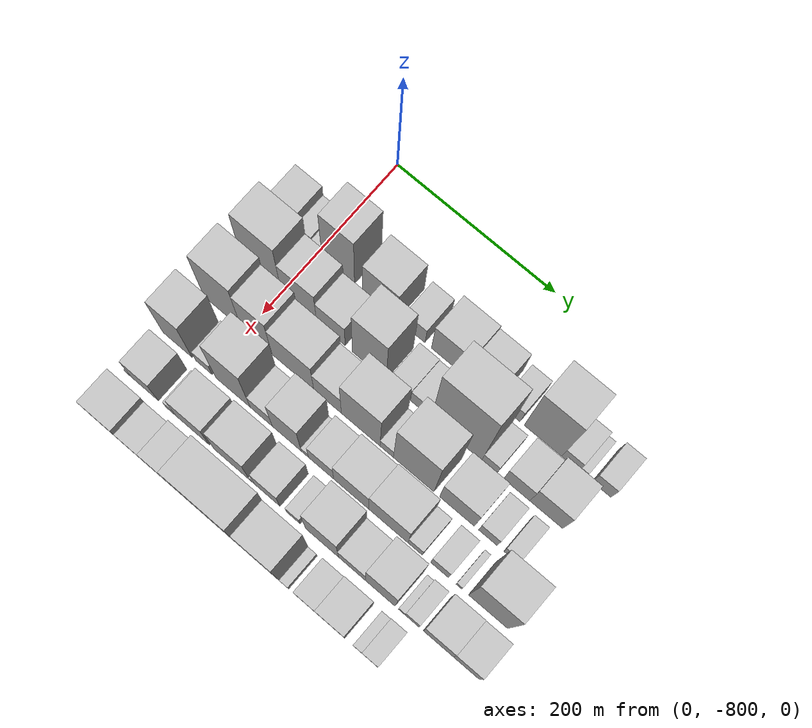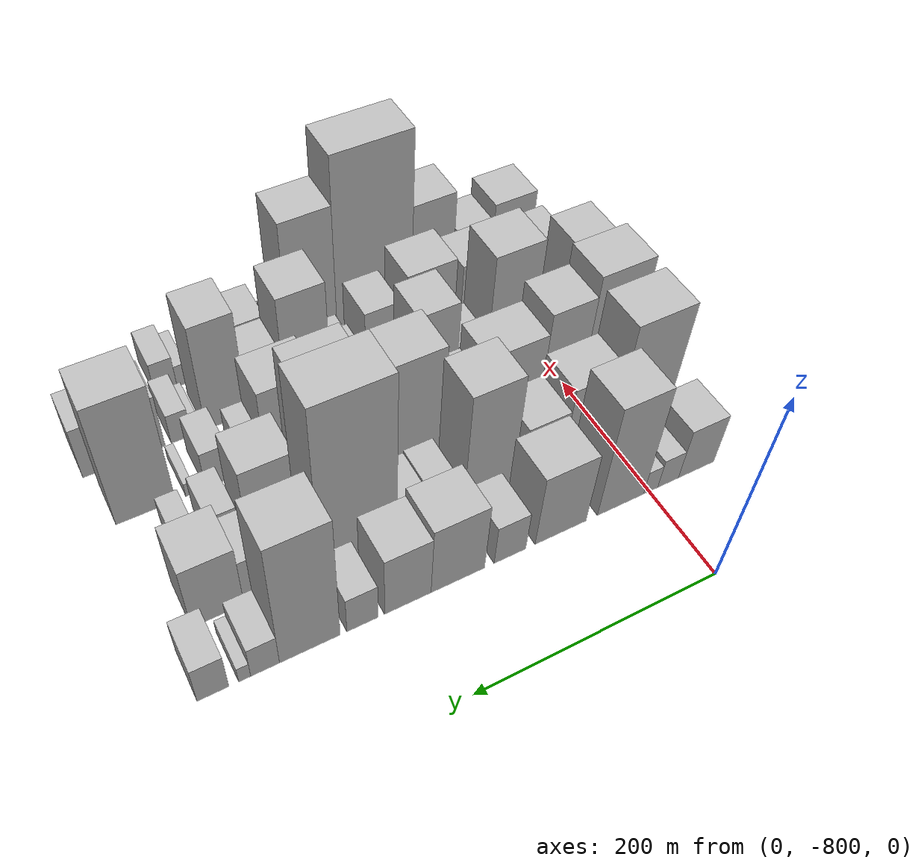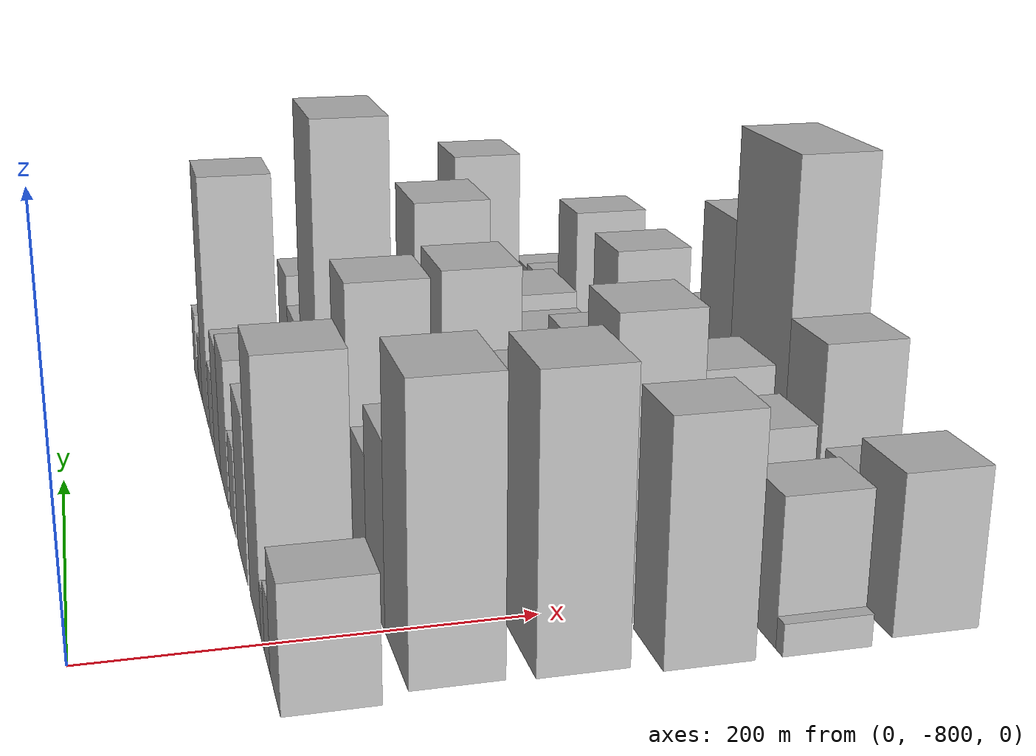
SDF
<sdf version="1.6">
 <world name="default">
  <model name="building_1">
   <static>1</static>
   <pose>100.0000 -843.2579 0 0.000000 0.000000 0.000000</pose>
   <link name="link">
    <pose>0 0 28.50 0 0 0</pose>
    <collision name="collision"><geometry><box><size>40.0000 33.4842 57.0000</size></box></geometry></collision>
    <visual name="visual">
     <cast_shadows>0</cast_shadows>
     <geometry><box><size>40.0000 33.4842 57.0000</size></box></geometry>
     <material>
      <script>
       <uri>model://HANNAS_wall/materials/scripts</uri>
       <uri>model://HANNAS_wall/materials/textures</uri>
       <name>vrc/HANNAS_wall</name>
      </script>
     </material>
    </visual>
   </link>
  </model>
  <model name="building_2">
   <static>1</static>
   <pose>100.0000 -816.9576 0 0.000000 0.000000 0.000000</pose>
   <link name="link">
    <pose>0 0 16.50 0 0 0</pose>
    <collision name="collision"><geometry><box><size>40.0000 19.1166 33.0000</size></box></geometry></collision>
    <visual name="visual">
     <cast_shadows>0</cast_shadows>
     <geometry><box><size>40.0000 19.1166 33.0000</size></box></geometry>
     <material>
      <script>
       <uri>model://HANNAS_wall/materials/scripts</uri>
       <uri>model://HANNAS_wall/materials/textures</uri>
       <name>vrc/HANNAS_wall</name>
      </script>
     </material>
    </visual>
   </link>
  </model>
  <model name="building_3">
   <static>1</static>
   <pose>100.0000 -800.8615 0 0.000000 0.000000 0.000000</pose>
   <link name="link">
    <pose>0 0 13.50 0 0 0</pose>
    <collision name="collision"><geometry><box><size>40.0000 13.0756 27.0000</size></box></geometry></collision>
    <visual name="visual">
     <cast_shadows>0</cast_shadows>
     <geometry><box><size>40.0000 13.0756 27.0000</size></box></geometry>
     <material>
      <script>
       <uri>model://HANNAS_wall/materials/scripts</uri>
       <uri>model://HANNAS_wall/materials/textures</uri>
       <name>vrc/HANNAS_wall</name>
      </script>
     </material>
    </visual>
   </link>
  </model>
  <model name="building_4">
   <static>1</static>
   <pose>100.0000 -773.4738 0 0.000000 0.000000 0.000000</pose>
   <link name="link">
    <pose>0 0 63.00 0 0 0</pose>
    <collision name="collision"><geometry><box><size>40.0000 41.6998 126.0000</size></box></geometry></collision>
    <visual name="visual">
     <cast_shadows>0</cast_shadows>
     <geometry><box><size>40.0000 41.6998 126.0000</size></box></geometry>
     <material>
      <script>
       <uri>model://HANNAS_wall/materials/scripts</uri>
       <uri>model://HANNAS_wall/materials/textures</uri>
       <name>vrc/HANNAS_wall</name>
      </script>
     </material>
    </visual>
   </link>
  </model>
  <model name="building_5">
   <static>1</static>
   <pose>100.0000 -720.4473 0 0.000000 0.000000 0.000000</pose>
   <link name="link">
    <pose>0 0 40.50 0 0 0</pose>
    <collision name="collision"><geometry><box><size>40.0000 44.3533 81.0000</size></box></geometry></collision>
    <visual name="visual">
     <cast_shadows>0</cast_shadows>
     <geometry><box><size>40.0000 44.3533 81.0000</size></box></geometry>
     <material>
      <script>
       <uri>model://HANNAS_wall/materials/scripts</uri>
       <uri>model://HANNAS_wall/materials/textures</uri>
       <name>vrc/HANNAS_wall</name>
      </script>
     </material>
    </visual>
   </link>
  </model>
  <model name="building_6">
   <static>1</static>
   <pose>100.0000 -676.9597 0 0.000000 0.000000 0.000000</pose>
   <link name="link">
    <pose>0 0 22.50 0 0 0</pose>
    <collision name="collision"><geometry><box><size>40.0000 26.6221 45.0000</size></box></geometry></collision>
    <visual name="visual">
     <cast_shadows>0</cast_shadows>
     <geometry><box><size>40.0000 26.6221 45.0000</size></box></geometry>
     <material>
      <script>
       <uri>model://HANNAS_wall/materials/scripts</uri>
       <uri>model://HANNAS_wall/materials/textures</uri>
       <name>vrc/HANNAS_wall</name>
      </script>
     </material>
    </visual>
   </link>
  </model>
  <model name="building_7">
   <static>1</static>
   <pose>100.0000 -633.8017 0 0.000000 0.000000 0.000000</pose>
   <link name="link">
    <pose>0 0 39.00 0 0 0</pose>
    <collision name="collision"><geometry><box><size>40.0000 43.6939 78.0000</size></box></geometry></collision>
    <visual name="visual">
     <cast_shadows>0</cast_shadows>
     <geometry><box><size>40.0000 43.6939 78.0000</size></box></geometry>
     <material>
      <script>
       <uri>model://HANNAS_wall/materials/scripts</uri>
       <uri>model://HANNAS_wall/materials/textures</uri>
       <name>vrc/HANNAS_wall</name>
      </script>
     </material>
    </visual>
   </link>
  </model>
  <model name="building_8">
   <static>1</static>
   <pose>100.0000 -593.5074 0 0.000000 0.000000 0.000000</pose>
   <link name="link">
    <pose>0 0 34.50 0 0 0</pose>
    <collision name="collision"><geometry><box><size>40.0000 36.8945 69.0000</size></box></geometry></collision>
    <visual name="visual">
     <cast_shadows>0</cast_shadows>
     <geometry><box><size>40.0000 36.8945 69.0000</size></box></geometry>
     <material>
      <script>
       <uri>model://HANNAS_wall/materials/scripts</uri>
       <uri>model://HANNAS_wall/materials/textures</uri>
       <name>vrc/HANNAS_wall</name>
      </script>
     </material>
    </visual>
   </link>
  </model>
  <model name="building_9">
   <static>1</static>
   <pose>100.0000 -558.0110 0 0.000000 0.000000 0.000000</pose>
   <link name="link">
    <pose>0 0 21.00 0 0 0</pose>
    <collision name="collision"><geometry><box><size>40.0000 24.0984 42.0000</size></box></geometry></collision>
    <visual name="visual">
     <cast_shadows>0</cast_shadows>
     <geometry><box><size>40.0000 24.0984 42.0000</size></box></geometry>
     <material>
      <script>
       <uri>model://HANNAS_wall/materials/scripts</uri>
       <uri>model://HANNAS_wall/materials/textures</uri>
       <name>vrc/HANNAS_wall</name>
      </script>
     </material>
    </visual>
   </link>
  </model>
  <model name="building_10">
   <static>1</static>
   <pose>100.0000 -518.2136 0 0.000000 0.000000 0.000000</pose>
   <link name="link">
    <pose>0 0 72.00 0 0 0</pose>
    <collision name="collision"><geometry><box><size>40.0000 45.4963 144.0000</size></box></geometry></collision>
    <visual name="visual">
     <cast_shadows>0</cast_shadows>
     <geometry><box><size>40.0000 45.4963 144.0000</size></box></geometry>
     <material>
      <script>
       <uri>model://HANNAS_wall/materials/scripts</uri>
       <uri>model://HANNAS_wall/materials/textures</uri>
       <name>vrc/HANNAS_wall</name>
      </script>
     </material>
    </visual>
   </link>
  </model>
  <model name="building_11">
   <static>1</static>
   <pose>100.0000 -484.9639 0 0.000000 0.000000 0.000000</pose>
   <link name="link">
    <pose>0 0 18.00 0 0 0</pose>
    <collision name="collision"><geometry><box><size>40.0000 21.0030 36.0000</size></box></geometry></collision>
    <visual name="visual">
     <cast_shadows>0</cast_shadows>
     <geometry><box><size>40.0000 21.0030 36.0000</size></box></geometry>
     <material>
      <script>
       <uri>model://HANNAS_wall/materials/scripts</uri>
       <uri>model://HANNAS_wall/materials/textures</uri>
       <name>vrc/HANNAS_wall</name>
      </script>
     </material>
    </visual>
   </link>
  </model>
  <model name="building_12">
   <static>1</static>
   <pose>100.0000 -470.1170 0 0.000000 0.000000 0.000000</pose>
   <link name="link">
    <pose>0 0 9.00 0 0 0</pose>
    <collision name="collision"><geometry><box><size>40.0000 8.6909 18.0000</size></box></geometry></collision>
    <visual name="visual">
     <cast_shadows>0</cast_shadows>
     <geometry><box><size>40.0000 8.6909 18.0000</size></box></geometry>
     <material>
      <script>
       <uri>model://HANNAS_wall/materials/scripts</uri>
       <uri>model://HANNAS_wall/materials/textures</uri>
       <name>vrc/HANNAS_wall</name>
      </script>
     </material>
    </visual>
   </link>
  </model>
  <model name="building_13">
   <static>1</static>
   <pose>100.0000 -447.4623 0 0.000000 0.000000 0.000000</pose>
   <link name="link">
    <pose>0 0 21.00 0 0 0</pose>
    <collision name="collision"><geometry><box><size>40.0000 22.6184 42.0000</size></box></geometry></collision>
    <visual name="visual">
     <cast_shadows>0</cast_shadows>
     <geometry><box><size>40.0000 22.6184 42.0000</size></box></geometry>
     <material>
      <script>
       <uri>model://HANNAS_wall/materials/scripts</uri>
       <uri>model://HANNAS_wall/materials/textures</uri>
       <name>vrc/HANNAS_wall</name>
      </script>
     </material>
    </visual>
   </link>
  </model>
  <model name="building_56">
   <static>1</static>
   <pose>152.0000 -826.3338 0 0.000000 0.000000 0.000000</pose>
   <link name="link">
    <pose>0 0 66.00 0 0 0</pose>
    <collision name="collision"><geometry><box><size>40.0000 51.3324 132.0000</size></box></geometry></collision>
    <visual name="visual">
     <cast_shadows>0</cast_shadows>
     <geometry><box><size>40.0000 51.3324 132.0000</size></box></geometry>
     <material>
      <script>
       <uri>model://HANNAS_wall/materials/scripts</uri>
       <uri>model://HANNAS_wall/materials/textures</uri>
       <name>vrc/HANNAS_wall</name>
      </script>
     </material>
    </visual>
   </link>
  </model>
  <model name="building_57">
   <static>1</static>
   <pose>152.0000 -778.1442 0 0.000000 0.000000 0.000000</pose>
   <link name="link">
    <pose>0 0 43.50 0 0 0</pose>
    <collision name="collision"><geometry><box><size>40.0000 45.0468 87.0000</size></box></geometry></collision>
    <visual name="visual">
     <cast_shadows>0</cast_shadows>
     <geometry><box><size>40.0000 45.0468 87.0000</size></box></geometry>
     <material>
      <script>
       <uri>model://HANNAS_wall/materials/scripts</uri>
       <uri>model://HANNAS_wall/materials/textures</uri>
       <name>vrc/HANNAS_wall</name>
      </script>
     </material>
    </visual>
   </link>
  </model>
  <model name="building_58">
   <static>1</static>
   <pose>152.0000 -737.5337 0 0.000000 0.000000 0.000000</pose>
   <link name="link">
    <pose>0 0 31.50 0 0 0</pose>
    <collision name="collision"><geometry><box><size>40.0000 36.1742 63.0000</size></box></geometry></collision>
    <visual name="visual">
     <cast_shadows>0</cast_shadows>
     <geometry><box><size>40.0000 36.1742 63.0000</size></box></geometry>
     <material>
      <script>
       <uri>model://HANNAS_wall/materials/scripts</uri>
       <uri>model://HANNAS_wall/materials/textures</uri>
       <name>vrc/HANNAS_wall</name>
      </script>
     </material>
    </visual>
   </link>
  </model>
  <model name="building_59">
   <static>1</static>
   <pose>152.0000 -689.2909 0 0.000000 0.000000 0.000000</pose>
   <link name="link">
    <pose>0 0 64.50 0 0 0</pose>
    <collision name="collision"><geometry><box><size>40.0000 42.3113 129.0000</size></box></geometry></collision>
    <visual name="visual">
     <cast_shadows>0</cast_shadows>
     <geometry><box><size>40.0000 42.3113 129.0000</size></box></geometry>
     <material>
      <script>
       <uri>model://HANNAS_wall/materials/scripts</uri>
       <uri>model://HANNAS_wall/materials/textures</uri>
       <name>vrc/HANNAS_wall</name>
      </script>
     </material>
    </visual>
   </link>
  </model>
  <model name="building_60">
   <static>1</static>
   <pose>152.0000 -649.9249 0 0.000000 0.000000 0.000000</pose>
   <link name="link">
    <pose>0 0 21.00 0 0 0</pose>
    <collision name="collision"><geometry><box><size>40.0000 24.4207 42.0000</size></box></geometry></collision>
    <visual name="visual">
     <cast_shadows>0</cast_shadows>
     <geometry><box><size>40.0000 24.4207 42.0000</size></box></geometry>
     <material>
      <script>
       <uri>model://HANNAS_wall/materials/scripts</uri>
       <uri>model://HANNAS_wall/materials/textures</uri>
       <name>vrc/HANNAS_wall</name>
      </script>
     </material>
    </visual>
   </link>
  </model>
  <model name="building_61">
   <static>1</static>
   <pose>152.0000 -626.3529 0 0.000000 0.000000 0.000000</pose>
   <link name="link">
    <pose>0 0 19.50 0 0 0</pose>
    <collision name="collision"><geometry><box><size>40.0000 22.7233 39.0000</size></box></geometry></collision>
    <visual name="visual">
     <cast_shadows>0</cast_shadows>
     <geometry><box><size>40.0000 22.7233 39.0000</size></box></geometry>
     <material>
      <script>
       <uri>model://HANNAS_wall/materials/scripts</uri>
       <uri>model://HANNAS_wall/materials/textures</uri>
       <name>vrc/HANNAS_wall</name>
      </script>
     </material>
    </visual>
   </link>
  </model>
  <model name="building_62">
   <static>1</static>
   <pose>152.0000 -580.9666 0 0.000000 0.000000 0.000000</pose>
   <link name="link">
    <pose>0 0 93.00 0 0 0</pose>
    <collision name="collision"><geometry><box><size>40.0000 62.0494 186.0000</size></box></geometry></collision>
    <visual name="visual">
     <cast_shadows>0</cast_shadows>
     <geometry><box><size>40.0000 62.0494 186.0000</size></box></geometry>
     <material>
      <script>
       <uri>model://HANNAS_wall/materials/scripts</uri>
       <uri>model://HANNAS_wall/materials/textures</uri>
       <name>vrc/HANNAS_wall</name>
      </script>
     </material>
    </visual>
   </link>
  </model>
  <model name="building_63">
   <static>1</static>
   <pose>152.0000 -540.5453 0 0.000000 0.000000 0.000000</pose>
   <link name="link">
    <pose>0 0 16.50 0 0 0</pose>
    <collision name="collision"><geometry><box><size>40.0000 18.7930 33.0000</size></box></geometry></collision>
    <visual name="visual">
     <cast_shadows>0</cast_shadows>
     <geometry><box><size>40.0000 18.7930 33.0000</size></box></geometry>
     <material>
      <script>
       <uri>model://HANNAS_wall/materials/scripts</uri>
       <uri>model://HANNAS_wall/materials/textures</uri>
       <name>vrc/HANNAS_wall</name>
      </script>
     </material>
    </visual>
   </link>
  </model>
  <model name="building_64">
   <static>1</static>
   <pose>152.0000 -507.2695 0 0.000000 0.000000 0.000000</pose>
   <link name="link">
    <pose>0 0 27.00 0 0 0</pose>
    <collision name="collision"><geometry><box><size>40.0000 31.7587 54.0000</size></box></geometry></collision>
    <visual name="visual">
     <cast_shadows>0</cast_shadows>
     <geometry><box><size>40.0000 31.7587 54.0000</size></box></geometry>
     <material>
      <script>
       <uri>model://HANNAS_wall/materials/scripts</uri>
       <uri>model://HANNAS_wall/materials/textures</uri>
       <name>vrc/HANNAS_wall</name>
      </script>
     </material>
    </visual>
   </link>
  </model>
  <model name="building_65">
   <static>1</static>
   <pose>152.0000 -471.6300 0 0.000000 0.000000 0.000000</pose>
   <link name="link">
    <pose>0 0 36.00 0 0 0</pose>
    <collision name="collision"><geometry><box><size>40.0000 39.5203 72.0000</size></box></geometry></collision>
    <visual name="visual">
     <cast_shadows>0</cast_shadows>
     <geometry><box><size>40.0000 39.5203 72.0000</size></box></geometry>
     <material>
      <script>
       <uri>model://HANNAS_wall/materials/scripts</uri>
       <uri>model://HANNAS_wall/materials/textures</uri>
       <name>vrc/HANNAS_wall</name>
      </script>
     </material>
    </visual>
   </link>
  </model>
  <model name="building_104">
   <static>1</static>
   <pose>204.0000 -829.8486 0 0.000000 0.000000 0.000000</pose>
   <link name="link">
    <pose>0 0 66.00 0 0 0</pose>
    <collision name="collision"><geometry><box><size>40.0000 48.3027 132.0000</size></box></geometry></collision>
    <visual name="visual">
     <cast_shadows>0</cast_shadows>
     <geometry><box><size>40.0000 48.3027 132.0000</size></box></geometry>
     <material>
      <script>
       <uri>model://HANNAS_wall/materials/scripts</uri>
       <uri>model://HANNAS_wall/materials/textures</uri>
       <name>vrc/HANNAS_wall</name>
      </script>
     </material>
    </visual>
   </link>
  </model>
  <model name="building_105">
   <static>1</static>
   <pose>204.0000 -786.0639 0 0.000000 0.000000 0.000000</pose>
   <link name="link">
    <pose>0 0 55.50 0 0 0</pose>
    <collision name="collision"><geometry><box><size>40.0000 39.2669 111.0000</size></box></geometry></collision>
    <visual name="visual">
     <cast_shadows>0</cast_shadows>
     <geometry><box><size>40.0000 39.2669 111.0000</size></box></geometry>
     <material>
      <script>
       <uri>model://HANNAS_wall/materials/scripts</uri>
       <uri>model://HANNAS_wall/materials/textures</uri>
       <name>vrc/HANNAS_wall</name>
      </script>
     </material>
    </visual>
   </link>
  </model>
  <model name="building_106">
   <static>1</static>
   <pose>204.0000 -740.1252 0 0.000000 0.000000 0.000000</pose>
   <link name="link">
    <pose>0 0 45.00 0 0 0</pose>
    <collision name="collision"><geometry><box><size>40.0000 52.6105 90.0000</size></box></geometry></collision>
    <visual name="visual">
     <cast_shadows>0</cast_shadows>
     <geometry><box><size>40.0000 52.6105 90.0000</size></box></geometry>
     <material>
      <script>
       <uri>model://HANNAS_wall/materials/scripts</uri>
       <uri>model://HANNAS_wall/materials/textures</uri>
       <name>vrc/HANNAS_wall</name>
      </script>
     </material>
    </visual>
   </link>
  </model>
  <model name="building_107">
   <static>1</static>
   <pose>204.0000 -696.4866 0 0.000000 0.000000 0.000000</pose>
   <link name="link">
    <pose>0 0 31.50 0 0 0</pose>
    <collision name="collision"><geometry><box><size>40.0000 34.6667 63.0000</size></box></geometry></collision>
    <visual name="visual">
     <cast_shadows>0</cast_shadows>
     <geometry><box><size>40.0000 34.6667 63.0000</size></box></geometry>
     <material>
      <script>
       <uri>model://HANNAS_wall/materials/scripts</uri>
       <uri>model://HANNAS_wall/materials/textures</uri>
       <name>vrc/HANNAS_wall</name>
      </script>
     </material>
    </visual>
   </link>
  </model>
  <model name="building_108">
   <static>1</static>
   <pose>204.0000 -655.1552 0 0.000000 0.000000 0.000000</pose>
   <link name="link">
    <pose>0 0 61.50 0 0 0</pose>
    <collision name="collision"><geometry><box><size>40.0000 47.9962 123.0000</size></box></geometry></collision>
    <visual name="visual">
     <cast_shadows>0</cast_shadows>
     <geometry><box><size>40.0000 47.9962 123.0000</size></box></geometry>
     <material>
      <script>
       <uri>model://HANNAS_wall/materials/scripts</uri>
       <uri>model://HANNAS_wall/materials/textures</uri>
       <name>vrc/HANNAS_wall</name>
      </script>
     </material>
    </visual>
   </link>
  </model>
  <model name="building_109">
   <static>1</static>
   <pose>204.0000 -622.8863 0 0.000000 0.000000 0.000000</pose>
   <link name="link">
    <pose>0 0 15.00 0 0 0</pose>
    <collision name="collision"><geometry><box><size>40.0000 16.5416 30.0000</size></box></geometry></collision>
    <visual name="visual">
     <cast_shadows>0</cast_shadows>
     <geometry><box><size>40.0000 16.5416 30.0000</size></box></geometry>
     <material>
      <script>
       <uri>model://HANNAS_wall/materials/scripts</uri>
       <uri>model://HANNAS_wall/materials/textures</uri>
       <name>vrc/HANNAS_wall</name>
      </script>
     </material>
    </visual>
   </link>
  </model>
  <model name="building_110">
   <static>1</static>
   <pose>204.0000 -589.6927 0 0.000000 0.000000 0.000000</pose>
   <link name="link">
    <pose>0 0 70.50 0 0 0</pose>
    <collision name="collision"><geometry><box><size>40.0000 49.8456 141.0000</size></box></geometry></collision>
    <visual name="visual">
     <cast_shadows>0</cast_shadows>
     <geometry><box><size>40.0000 49.8456 141.0000</size></box></geometry>
     <material>
      <script>
       <uri>model://HANNAS_wall/materials/scripts</uri>
       <uri>model://HANNAS_wall/materials/textures</uri>
       <name>vrc/HANNAS_wall</name>
      </script>
     </material>
    </visual>
   </link>
  </model>
  <model name="building_111">
   <static>1</static>
   <pose>204.0000 -536.5830 0 0.000000 0.000000 0.000000</pose>
   <link name="link">
    <pose>0 0 37.50 0 0 0</pose>
    <collision name="collision"><geometry><box><size>40.0000 42.3738 75.0000</size></box></geometry></collision>
    <visual name="visual">
     <cast_shadows>0</cast_shadows>
     <geometry><box><size>40.0000 42.3738 75.0000</size></box></geometry>
     <material>
      <script>
       <uri>model://HANNAS_wall/materials/scripts</uri>
       <uri>model://HANNAS_wall/materials/textures</uri>
       <name>vrc/HANNAS_wall</name>
      </script>
     </material>
    </visual>
   </link>
  </model>
  <model name="building_112">
   <static>1</static>
   <pose>204.0000 -499.2252 0 0.000000 0.000000 0.000000</pose>
   <link name="link">
    <pose>0 0 19.50 0 0 0</pose>
    <collision name="collision"><geometry><box><size>40.0000 22.3420 39.0000</size></box></geometry></collision>
    <visual name="visual">
     <cast_shadows>0</cast_shadows>
     <geometry><box><size>40.0000 22.3420 39.0000</size></box></geometry>
     <material>
      <script>
       <uri>model://HANNAS_wall/materials/scripts</uri>
       <uri>model://HANNAS_wall/materials/textures</uri>
       <name>vrc/HANNAS_wall</name>
      </script>
     </material>
    </visual>
   </link>
  </model>
  <model name="building_113">
   <static>1</static>
   <pose>204.0000 -471.4036 0 0.000000 0.000000 0.000000</pose>
   <link name="link">
    <pose>0 0 15.00 0 0 0</pose>
    <collision name="collision"><geometry><box><size>40.0000 17.3011 30.0000</size></box></geometry></collision>
    <visual name="visual">
     <cast_shadows>0</cast_shadows>
     <geometry><box><size>40.0000 17.3011 30.0000</size></box></geometry>
     <material>
      <script>
       <uri>model://HANNAS_wall/materials/scripts</uri>
       <uri>model://HANNAS_wall/materials/textures</uri>
       <name>vrc/HANNAS_wall</name>
      </script>
     </material>
    </visual>
   </link>
  </model>
  <model name="building_147">
   <static>1</static>
   <pose>256.0000 -841.1995 0 0.000000 0.000000 0.000000</pose>
   <link name="link">
    <pose>0 0 55.50 0 0 0</pose>
    <collision name="collision"><geometry><box><size>40.0000 37.6010 111.0000</size></box></geometry></collision>
    <visual name="visual">
     <cast_shadows>0</cast_shadows>
     <geometry><box><size>40.0000 37.6010 111.0000</size></box></geometry>
     <material>
      <script>
       <uri>model://HANNAS_wall/materials/scripts</uri>
       <uri>model://HANNAS_wall/materials/textures</uri>
       <name>vrc/HANNAS_wall</name>
      </script>
     </material>
    </visual>
   </link>
  </model>
  <model name="building_148">
   <static>1</static>
   <pose>256.0000 -806.9938 0 0.000000 0.000000 0.000000</pose>
   <link name="link">
    <pose>0 0 18.00 0 0 0</pose>
    <collision name="collision"><geometry><box><size>40.0000 20.8106 36.0000</size></box></geometry></collision>
    <visual name="visual">
     <cast_shadows>0</cast_shadows>
     <geometry><box><size>40.0000 20.8106 36.0000</size></box></geometry>
     <material>
      <script>
       <uri>model://HANNAS_wall/materials/scripts</uri>
       <uri>model://HANNAS_wall/materials/textures</uri>
       <name>vrc/HANNAS_wall</name>
      </script>
     </material>
    </visual>
   </link>
  </model>
  <model name="building_149">
   <static>1</static>
   <pose>256.0000 -769.7388 0 0.000000 0.000000 0.000000</pose>
   <link name="link">
    <pose>0 0 66.00 0 0 0</pose>
    <collision name="collision"><geometry><box><size>40.0000 43.6993 132.0000</size></box></geometry></collision>
    <visual name="visual">
     <cast_shadows>0</cast_shadows>
     <geometry><box><size>40.0000 43.6993 132.0000</size></box></geometry>
     <material>
      <script>
       <uri>model://HANNAS_wall/materials/scripts</uri>
       <uri>model://HANNAS_wall/materials/textures</uri>
       <name>vrc/HANNAS_wall</name>
      </script>
     </material>
    </visual>
   </link>
  </model>
  <model name="building_150">
   <static>1</static>
   <pose>256.0000 -734.0126 0 0.000000 0.000000 0.000000</pose>
   <link name="link">
    <pose>0 0 24.00 0 0 0</pose>
    <collision name="collision"><geometry><box><size>40.0000 27.7532 48.0000</size></box></geometry></collision>
    <visual name="visual">
     <cast_shadows>0</cast_shadows>
     <geometry><box><size>40.0000 27.7532 48.0000</size></box></geometry>
     <material>
      <script>
       <uri>model://HANNAS_wall/materials/scripts</uri>
       <uri>model://HANNAS_wall/materials/textures</uri>
       <name>vrc/HANNAS_wall</name>
      </script>
     </material>
    </visual>
   </link>
  </model>
  <model name="building_151">
   <static>1</static>
   <pose>256.0000 -702.0082 0 0.000000 0.000000 0.000000</pose>
   <link name="link">
    <pose>0 0 49.50 0 0 0</pose>
    <collision name="collision"><geometry><box><size>40.0000 36.2556 99.0000</size></box></geometry></collision>
    <visual name="visual">
     <cast_shadows>0</cast_shadows>
     <geometry><box><size>40.0000 36.2556 99.0000</size></box></geometry>
     <material>
      <script>
       <uri>model://HANNAS_wall/materials/scripts</uri>
       <uri>model://HANNAS_wall/materials/textures</uri>
       <name>vrc/HANNAS_wall</name>
      </script>
     </material>
    </visual>
   </link>
  </model>
  <model name="building_152">
   <static>1</static>
   <pose>256.0000 -679.3851 0 0.000000 0.000000 0.000000</pose>
   <link name="link">
    <pose>0 0 9.00 0 0 0</pose>
    <collision name="collision"><geometry><box><size>40.0000 8.9906 18.0000</size></box></geometry></collision>
    <visual name="visual">
     <cast_shadows>0</cast_shadows>
     <geometry><box><size>40.0000 8.9906 18.0000</size></box></geometry>
     <material>
      <script>
       <uri>model://HANNAS_wall/materials/scripts</uri>
       <uri>model://HANNAS_wall/materials/textures</uri>
       <name>vrc/HANNAS_wall</name>
      </script>
     </material>
    </visual>
   </link>
  </model>
  <model name="building_153">
   <static>1</static>
   <pose>256.0000 -659.2108 0 0.000000 0.000000 0.000000</pose>
   <link name="link">
    <pose>0 0 27.00 0 0 0</pose>
    <collision name="collision"><geometry><box><size>40.0000 31.3580 54.0000</size></box></geometry></collision>
    <visual name="visual">
     <cast_shadows>0</cast_shadows>
     <geometry><box><size>40.0000 31.3580 54.0000</size></box></geometry>
     <material>
      <script>
       <uri>model://HANNAS_wall/materials/scripts</uri>
       <uri>model://HANNAS_wall/materials/textures</uri>
       <name>vrc/HANNAS_wall</name>
      </script>
     </material>
    </visual>
   </link>
  </model>
  <model name="building_154">
   <static>1</static>
   <pose>256.0000 -621.9822 0 0.000000 0.000000 0.000000</pose>
   <link name="link">
    <pose>0 0 37.50 0 0 0</pose>
    <collision name="collision"><geometry><box><size>40.0000 43.0992 75.0000</size></box></geometry></collision>
    <visual name="visual">
     <cast_shadows>0</cast_shadows>
     <geometry><box><size>40.0000 43.0992 75.0000</size></box></geometry>
     <material>
      <script>
       <uri>model://HANNAS_wall/materials/scripts</uri>
       <uri>model://HANNAS_wall/materials/textures</uri>
       <name>vrc/HANNAS_wall</name>
      </script>
     </material>
    </visual>
   </link>
  </model>
  <model name="building_155">
   <static>1</static>
   <pose>256.0000 -576.4182 0 0.000000 0.000000 0.000000</pose>
   <link name="link">
    <pose>0 0 42.00 0 0 0</pose>
    <collision name="collision"><geometry><box><size>40.0000 48.0288 84.0000</size></box></geometry></collision>
    <visual name="visual">
     <cast_shadows>0</cast_shadows>
     <geometry><box><size>40.0000 48.0288 84.0000</size></box></geometry>
     <material>
      <script>
       <uri>model://HANNAS_wall/materials/scripts</uri>
       <uri>model://HANNAS_wall/materials/textures</uri>
       <name>vrc/HANNAS_wall</name>
      </script>
     </material>
    </visual>
   </link>
  </model>
  <model name="building_156">
   <static>1</static>
   <pose>256.0000 -543.6343 0 0.000000 0.000000 0.000000</pose>
   <link name="link">
    <pose>0 0 16.50 0 0 0</pose>
    <collision name="collision"><geometry><box><size>40.0000 17.5389 33.0000</size></box></geometry></collision>
    <visual name="visual">
     <cast_shadows>0</cast_shadows>
     <geometry><box><size>40.0000 17.5389 33.0000</size></box></geometry>
     <material>
      <script>
       <uri>model://HANNAS_wall/materials/scripts</uri>
       <uri>model://HANNAS_wall/materials/textures</uri>
       <name>vrc/HANNAS_wall</name>
      </script>
     </material>
    </visual>
   </link>
  </model>
  <model name="building_157">
   <static>1</static>
   <pose>256.0000 -513.9835 0 0.000000 0.000000 0.000000</pose>
   <link name="link">
    <pose>0 0 21.00 0 0 0</pose>
    <collision name="collision"><geometry><box><size>40.0000 21.7627 42.0000</size></box></geometry></collision>
    <visual name="visual">
     <cast_shadows>0</cast_shadows>
     <geometry><box><size>40.0000 21.7627 42.0000</size></box></geometry>
     <material>
      <script>
       <uri>model://HANNAS_wall/materials/scripts</uri>
       <uri>model://HANNAS_wall/materials/textures</uri>
       <name>vrc/HANNAS_wall</name>
      </script>
     </material>
    </visual>
   </link>
  </model>
  <model name="building_158">
   <static>1</static>
   <pose>256.0000 -490.6640 0 0.000000 0.000000 0.000000</pose>
   <link name="link">
    <pose>0 0 7.50 0 0 0</pose>
    <collision name="collision"><geometry><box><size>40.0000 6.8761 15.0000</size></box></geometry></collision>
    <visual name="visual">
     <cast_shadows>0</cast_shadows>
     <geometry><box><size>40.0000 6.8761 15.0000</size></box></geometry>
     <material>
      <script>
       <uri>model://HANNAS_wall/materials/scripts</uri>
       <uri>model://HANNAS_wall/materials/textures</uri>
       <name>vrc/HANNAS_wall</name>
      </script>
     </material>
    </visual>
   </link>
  </model>
  <model name="building_159">
   <static>1</static>
   <pose>256.0000 -455.8523 0 0.000000 0.000000 0.000000</pose>
   <link name="link">
    <pose>0 0 67.50 0 0 0</pose>
    <collision name="collision"><geometry><box><size>40.0000 46.7473 135.0000</size></box></geometry></collision>
    <visual name="visual">
     <cast_shadows>0</cast_shadows>
     <geometry><box><size>40.0000 46.7473 135.0000</size></box></geometry>
     <material>
      <script>
       <uri>model://HANNAS_wall/materials/scripts</uri>
       <uri>model://HANNAS_wall/materials/textures</uri>
       <name>vrc/HANNAS_wall</name>
      </script>
     </material>
    </visual>
   </link>
  </model>
  <model name="building_194">
   <static>1</static>
   <pose>308.0000 -856.4134 0 0.000000 0.000000 0.000000</pose>
   <link name="link">
    <pose>0 0 7.50 0 0 0</pose>
    <collision name="collision"><geometry><box><size>40.0000 7.1733 15.0000</size></box></geometry></collision>
    <visual name="visual">
     <cast_shadows>0</cast_shadows>
     <geometry><box><size>40.0000 7.1733 15.0000</size></box></geometry>
     <material>
      <script>
       <uri>model://HANNAS_wall/materials/scripts</uri>
       <uri>model://HANNAS_wall/materials/textures</uri>
       <name>vrc/HANNAS_wall</name>
      </script>
     </material>
    </visual>
   </link>
  </model>
  <model name="building_195">
   <static>1</static>
   <pose>308.0000 -835.5542 0 0.000000 0.000000 0.000000</pose>
   <link name="link">
    <pose>0 0 34.50 0 0 0</pose>
    <collision name="collision"><geometry><box><size>40.0000 34.5451 69.0000</size></box></geometry></collision>
    <visual name="visual">
     <cast_shadows>0</cast_shadows>
     <geometry><box><size>40.0000 34.5451 69.0000</size></box></geometry>
     <material>
      <script>
       <uri>model://HANNAS_wall/materials/scripts</uri>
       <uri>model://HANNAS_wall/materials/textures</uri>
       <name>vrc/HANNAS_wall</name>
      </script>
     </material>
    </visual>
   </link>
  </model>
  <model name="building_196">
   <static>1</static>
   <pose>308.0000 -801.8889 0 0.000000 0.000000 0.000000</pose>
   <link name="link">
    <pose>0 0 13.50 0 0 0</pose>
    <collision name="collision"><geometry><box><size>40.0000 12.7855 27.0000</size></box></geometry></collision>
    <visual name="visual">
     <cast_shadows>0</cast_shadows>
     <geometry><box><size>40.0000 12.7855 27.0000</size></box></geometry>
     <material>
      <script>
       <uri>model://HANNAS_wall/materials/scripts</uri>
       <uri>model://HANNAS_wall/materials/textures</uri>
       <name>vrc/HANNAS_wall</name>
      </script>
     </material>
    </visual>
   </link>
  </model>
  <model name="building_197">
   <static>1</static>
   <pose>308.0000 -774.3317 0 0.000000 0.000000 0.000000</pose>
   <link name="link">
    <pose>0 0 37.50 0 0 0</pose>
    <collision name="collision"><geometry><box><size>40.0000 42.3289 75.0000</size></box></geometry></collision>
    <visual name="visual">
     <cast_shadows>0</cast_shadows>
     <geometry><box><size>40.0000 42.3289 75.0000</size></box></geometry>
     <material>
      <script>
       <uri>model://HANNAS_wall/materials/scripts</uri>
       <uri>model://HANNAS_wall/materials/textures</uri>
       <name>vrc/HANNAS_wall</name>
      </script>
     </material>
    </visual>
   </link>
  </model>
  <model name="building_198">
   <static>1</static>
   <pose>308.0000 -724.8045 0 0.000000 0.000000 0.000000</pose>
   <link name="link">
    <pose>0 0 43.50 0 0 0</pose>
    <collision name="collision"><geometry><box><size>40.0000 44.7255 87.0000</size></box></geometry></collision>
    <visual name="visual">
     <cast_shadows>0</cast_shadows>
     <geometry><box><size>40.0000 44.7255 87.0000</size></box></geometry>
     <material>
      <script>
       <uri>model://HANNAS_wall/materials/scripts</uri>
       <uri>model://HANNAS_wall/materials/textures</uri>
       <name>vrc/HANNAS_wall</name>
      </script>
     </material>
    </visual>
   </link>
  </model>
  <model name="building_199">
   <static>1</static>
   <pose>308.0000 -699.3989 0 0.000000 0.000000 0.000000</pose>
   <link name="link">
    <pose>0 0 7.50 0 0 0</pose>
    <collision name="collision"><geometry><box><size>40.0000 6.0856 15.0000</size></box></geometry></collision>
    <visual name="visual">
     <cast_shadows>0</cast_shadows>
     <geometry><box><size>40.0000 6.0856 15.0000</size></box></geometry>
     <material>
      <script>
       <uri>model://HANNAS_wall/materials/scripts</uri>
       <uri>model://HANNAS_wall/materials/textures</uri>
       <name>vrc/HANNAS_wall</name>
      </script>
     </material>
    </visual>
   </link>
  </model>
  <model name="building_200">
   <static>1</static>
   <pose>308.0000 -680.4460 0 0.000000 0.000000 0.000000</pose>
   <link name="link">
    <pose>0 0 31.50 0 0 0</pose>
    <collision name="collision"><geometry><box><size>40.0000 31.8201 63.0000</size></box></geometry></collision>
    <visual name="visual">
     <cast_shadows>0</cast_shadows>
     <geometry><box><size>40.0000 31.8201 63.0000</size></box></geometry>
     <material>
      <script>
       <uri>model://HANNAS_wall/materials/scripts</uri>
       <uri>model://HANNAS_wall/materials/textures</uri>
       <name>vrc/HANNAS_wall</name>
      </script>
     </material>
    </visual>
   </link>
  </model>
  <model name="building_201">
   <static>1</static>
   <pose>308.0000 -648.0761 0 0.000000 0.000000 0.000000</pose>
   <link name="link">
    <pose>0 0 15.00 0 0 0</pose>
    <collision name="collision"><geometry><box><size>40.0000 16.9196 30.0000</size></box></geometry></collision>
    <visual name="visual">
     <cast_shadows>0</cast_shadows>
     <geometry><box><size>40.0000 16.9196 30.0000</size></box></geometry>
     <material>
      <script>
       <uri>model://HANNAS_wall/materials/scripts</uri>
       <uri>model://HANNAS_wall/materials/textures</uri>
       <name>vrc/HANNAS_wall</name>
      </script>
     </material>
    </visual>
   </link>
  </model>
  <model name="building_202">
   <static>1</static>
   <pose>308.0000 -612.4536 0 0.000000 0.000000 0.000000</pose>
   <link name="link">
    <pose>0 0 57.00 0 0 0</pose>
    <collision name="collision"><geometry><box><size>40.0000 40.3253 114.0000</size></box></geometry></collision>
    <visual name="visual">
     <cast_shadows>0</cast_shadows>
     <geometry><box><size>40.0000 40.3253 114.0000</size></box></geometry>
     <material>
      <script>
       <uri>model://HANNAS_wall/materials/scripts</uri>
       <uri>model://HANNAS_wall/materials/textures</uri>
       <name>vrc/HANNAS_wall</name>
      </script>
     </material>
    </visual>
   </link>
  </model>
  <model name="building_203">
   <static>1</static>
   <pose>308.0000 -575.8048 0 0.000000 0.000000 0.000000</pose>
   <link name="link">
    <pose>0 0 28.50 0 0 0</pose>
    <collision name="collision"><geometry><box><size>40.0000 32.9724 57.0000</size></box></geometry></collision>
    <visual name="visual">
     <cast_shadows>0</cast_shadows>
     <geometry><box><size>40.0000 32.9724 57.0000</size></box></geometry>
     <material>
      <script>
       <uri>model://HANNAS_wall/materials/scripts</uri>
       <uri>model://HANNAS_wall/materials/textures</uri>
       <name>vrc/HANNAS_wall</name>
      </script>
     </material>
    </visual>
   </link>
  </model>
  <model name="building_204">
   <static>1</static>
   <pose>308.0000 -541.4762 0 0.000000 0.000000 0.000000</pose>
   <link name="link">
    <pose>0 0 58.50 0 0 0</pose>
    <collision name="collision"><geometry><box><size>40.0000 35.6848 117.0000</size></box></geometry></collision>
    <visual name="visual">
     <cast_shadows>0</cast_shadows>
     <geometry><box><size>40.0000 35.6848 117.0000</size></box></geometry>
     <material>
      <script>
       <uri>model://HANNAS_wall/materials/scripts</uri>
       <uri>model://HANNAS_wall/materials/textures</uri>
       <name>vrc/HANNAS_wall</name>
      </script>
     </material>
    </visual>
   </link>
  </model>
  <model name="building_205">
   <static>1</static>
   <pose>308.0000 -515.6323 0 0.000000 0.000000 0.000000</pose>
   <link name="link">
    <pose>0 0 9.00 0 0 0</pose>
    <collision name="collision"><geometry><box><size>40.0000 8.0031 18.0000</size></box></geometry></collision>
    <visual name="visual">
     <cast_shadows>0</cast_shadows>
     <geometry><box><size>40.0000 8.0031 18.0000</size></box></geometry>
     <material>
      <script>
       <uri>model://HANNAS_wall/materials/scripts</uri>
       <uri>model://HANNAS_wall/materials/textures</uri>
       <name>vrc/HANNAS_wall</name>
      </script>
     </material>
    </visual>
   </link>
  </model>
  <model name="building_206">
   <static>1</static>
   <pose>308.0000 -503.2553 0 0.000000 0.000000 0.000000</pose>
   <link name="link">
    <pose>0 0 16.50 0 0 0</pose>
    <collision name="collision"><geometry><box><size>40.0000 16.7509 33.0000</size></box></geometry></collision>
    <visual name="visual">
     <cast_shadows>0</cast_shadows>
     <geometry><box><size>40.0000 16.7509 33.0000</size></box></geometry>
     <material>
      <script>
       <uri>model://HANNAS_wall/materials/scripts</uri>
       <uri>model://HANNAS_wall/materials/textures</uri>
       <name>vrc/HANNAS_wall</name>
      </script>
     </material>
    </visual>
   </link>
  </model>
  <model name="building_207">
   <static>1</static>
   <pose>308.0000 -472.2937 0 0.000000 0.000000 0.000000</pose>
   <link name="link">
    <pose>0 0 30.00 0 0 0</pose>
    <collision name="collision"><geometry><box><size>40.0000 35.1722 60.0000</size></box></geometry></collision>
    <visual name="visual">
     <cast_shadows>0</cast_shadows>
     <geometry><box><size>40.0000 35.1722 60.0000</size></box></geometry>
     <material>
      <script>
       <uri>model://HANNAS_wall/materials/scripts</uri>
       <uri>model://HANNAS_wall/materials/textures</uri>
       <name>vrc/HANNAS_wall</name>
      </script>
     </material>
    </visual>
   </link>
  </model>
  <model name="building_208">
   <static>1</static>
   <pose>308.0000 -439.1744 0 0.000000 0.000000 0.000000</pose>
   <link name="link">
    <pose>0 0 28.50 0 0 0</pose>
    <collision name="collision"><geometry><box><size>40.0000 31.0662 57.0000</size></box></geometry></collision>
    <visual name="visual">
     <cast_shadows>0</cast_shadows>
     <geometry><box><size>40.0000 31.0662 57.0000</size></box></geometry>
     <material>
      <script>
       <uri>model://HANNAS_wall/materials/scripts</uri>
       <uri>model://HANNAS_wall/materials/textures</uri>
       <name>vrc/HANNAS_wall</name>
      </script>
     </material>
    </visual>
   </link>
  </model>
  <model name="building_242">
   <static>1</static>
   <pose>360.0000 -834.5135 0 0.000000 0.000000 0.000000</pose>
   <link name="link">
    <pose>0 0 37.50 0 0 0</pose>
    <collision name="collision"><geometry><box><size>40.0000 40.9730 75.0000</size></box></geometry></collision>
    <visual name="visual">
     <cast_shadows>0</cast_shadows>
     <geometry><box><size>40.0000 40.9730 75.0000</size></box></geometry>
     <material>
      <script>
       <uri>model://HANNAS_wall/materials/scripts</uri>
       <uri>model://HANNAS_wall/materials/textures</uri>
       <name>vrc/HANNAS_wall</name>
      </script>
     </material>
    </visual>
   </link>
  </model>
  <model name="building_243">
   <static>1</static>
   <pose>360.0000 -797.0142 0 0.000000 0.000000 0.000000</pose>
   <link name="link">
    <pose>0 0 28.50 0 0 0</pose>
    <collision name="collision"><geometry><box><size>40.0000 34.0255 57.0000</size></box></geometry></collision>
    <visual name="visual">
     <cast_shadows>0</cast_shadows>
     <geometry><box><size>40.0000 34.0255 57.0000</size></box></geometry>
     <material>
      <script>
       <uri>model://HANNAS_wall/materials/scripts</uri>
       <uri>model://HANNAS_wall/materials/textures</uri>
       <name>vrc/HANNAS_wall</name>
      </script>
     </material>
    </visual>
   </link>
  </model>
  <model name="building_244">
   <static>1</static>
   <pose>360.0000 -754.9223 0 0.000000 0.000000 0.000000</pose>
   <link name="link">
    <pose>0 0 52.50 0 0 0</pose>
    <collision name="collision"><geometry><box><size>40.0000 40.1583 105.0000</size></box></geometry></collision>
    <visual name="visual">
     <cast_shadows>0</cast_shadows>
     <geometry><box><size>40.0000 40.1583 105.0000</size></box></geometry>
     <material>
      <script>
       <uri>model://HANNAS_wall/materials/scripts</uri>
       <uri>model://HANNAS_wall/materials/textures</uri>
       <name>vrc/HANNAS_wall</name>
      </script>
     </material>
    </visual>
   </link>
  </model>
  <model name="building_245">
   <static>1</static>
   <pose>360.0000 -699.0064 0 0.000000 0.000000 0.000000</pose>
   <link name="link">
    <pose>0 0 91.50 0 0 0</pose>
    <collision name="collision"><geometry><box><size>40.0000 71.6735 183.0000</size></box></geometry></collision>
    <visual name="visual">
     <cast_shadows>0</cast_shadows>
     <geometry><box><size>40.0000 71.6735 183.0000</size></box></geometry>
     <material>
      <script>
       <uri>model://HANNAS_wall/materials/scripts</uri>
       <uri>model://HANNAS_wall/materials/textures</uri>
       <name>vrc/HANNAS_wall</name>
      </script>
     </material>
    </visual>
   </link>
  </model>
  <model name="building_246">
   <static>1</static>
   <pose>360.0000 -640.7297 0 0.000000 0.000000 0.000000</pose>
   <link name="link">
    <pose>0 0 67.50 0 0 0</pose>
    <collision name="collision"><geometry><box><size>40.0000 44.8800 135.0000</size></box></geometry></collision>
    <visual name="visual">
     <cast_shadows>0</cast_shadows>
     <geometry><box><size>40.0000 44.8800 135.0000</size></box></geometry>
     <material>
      <script>
       <uri>model://HANNAS_wall/materials/scripts</uri>
       <uri>model://HANNAS_wall/materials/textures</uri>
       <name>vrc/HANNAS_wall</name>
      </script>
     </material>
    </visual>
   </link>
  </model>
  <model name="building_247">
   <static>1</static>
   <pose>360.0000 -613.1157 0 0.000000 0.000000 0.000000</pose>
   <link name="link">
    <pose>0 0 10.50 0 0 0</pose>
    <collision name="collision"><geometry><box><size>40.0000 10.3481 21.0000</size></box></geometry></collision>
    <visual name="visual">
     <cast_shadows>0</cast_shadows>
     <geometry><box><size>40.0000 10.3481 21.0000</size></box></geometry>
     <material>
      <script>
       <uri>model://HANNAS_wall/materials/scripts</uri>
       <uri>model://HANNAS_wall/materials/textures</uri>
       <name>vrc/HANNAS_wall</name>
      </script>
     </material>
    </visual>
   </link>
  </model>
  <model name="building_248">
   <static>1</static>
   <pose>360.0000 -586.9663 0 0.000000 0.000000 0.000000</pose>
   <link name="link">
    <pose>0 0 22.50 0 0 0</pose>
    <collision name="collision"><geometry><box><size>40.0000 25.9505 45.0000</size></box></geometry></collision>
    <visual name="visual">
     <cast_shadows>0</cast_shadows>
     <geometry><box><size>40.0000 25.9505 45.0000</size></box></geometry>
     <material>
      <script>
       <uri>model://HANNAS_wall/materials/scripts</uri>
       <uri>model://HANNAS_wall/materials/textures</uri>
       <name>vrc/HANNAS_wall</name>
      </script>
     </material>
    </visual>
   </link>
  </model>
  <model name="building_249">
   <static>1</static>
   <pose>360.0000 -556.8215 0 0.000000 0.000000 0.000000</pose>
   <link name="link">
    <pose>0 0 30.00 0 0 0</pose>
    <collision name="collision"><geometry><box><size>40.0000 34.3392 60.0000</size></box></geometry></collision>
    <visual name="visual">
     <cast_shadows>0</cast_shadows>
     <geometry><box><size>40.0000 34.3392 60.0000</size></box></geometry>
     <material>
      <script>
       <uri>model://HANNAS_wall/materials/scripts</uri>
       <uri>model://HANNAS_wall/materials/textures</uri>
       <name>vrc/HANNAS_wall</name>
      </script>
     </material>
    </visual>
   </link>
  </model>
  <model name="building_250">
   <static>1</static>
   <pose>360.0000 -524.3506 0 0.000000 0.000000 0.000000</pose>
   <link name="link">
    <pose>0 0 12.00 0 0 0</pose>
    <collision name="collision"><geometry><box><size>40.0000 10.6026 24.0000</size></box></geometry></collision>
    <visual name="visual">
     <cast_shadows>0</cast_shadows>
     <geometry><box><size>40.0000 10.6026 24.0000</size></box></geometry>
     <material>
      <script>
       <uri>model://HANNAS_wall/materials/scripts</uri>
       <uri>model://HANNAS_wall/materials/textures</uri>
       <name>vrc/HANNAS_wall</name>
      </script>
     </material>
    </visual>
   </link>
  </model>
  <model name="building_251">
   <static>1</static>
   <pose>360.0000 -509.5113 0 0.000000 0.000000 0.000000</pose>
   <link name="link">
    <pose>0 0 18.00 0 0 0</pose>
    <collision name="collision"><geometry><box><size>40.0000 19.0760 36.0000</size></box></geometry></collision>
    <visual name="visual">
     <cast_shadows>0</cast_shadows>
     <geometry><box><size>40.0000 19.0760 36.0000</size></box></geometry>
     <material>
      <script>
       <uri>model://HANNAS_wall/materials/scripts</uri>
       <uri>model://HANNAS_wall/materials/textures</uri>
       <name>vrc/HANNAS_wall</name>
      </script>
     </material>
    </visual>
   </link>
  </model>
 </world>
</sdf>
